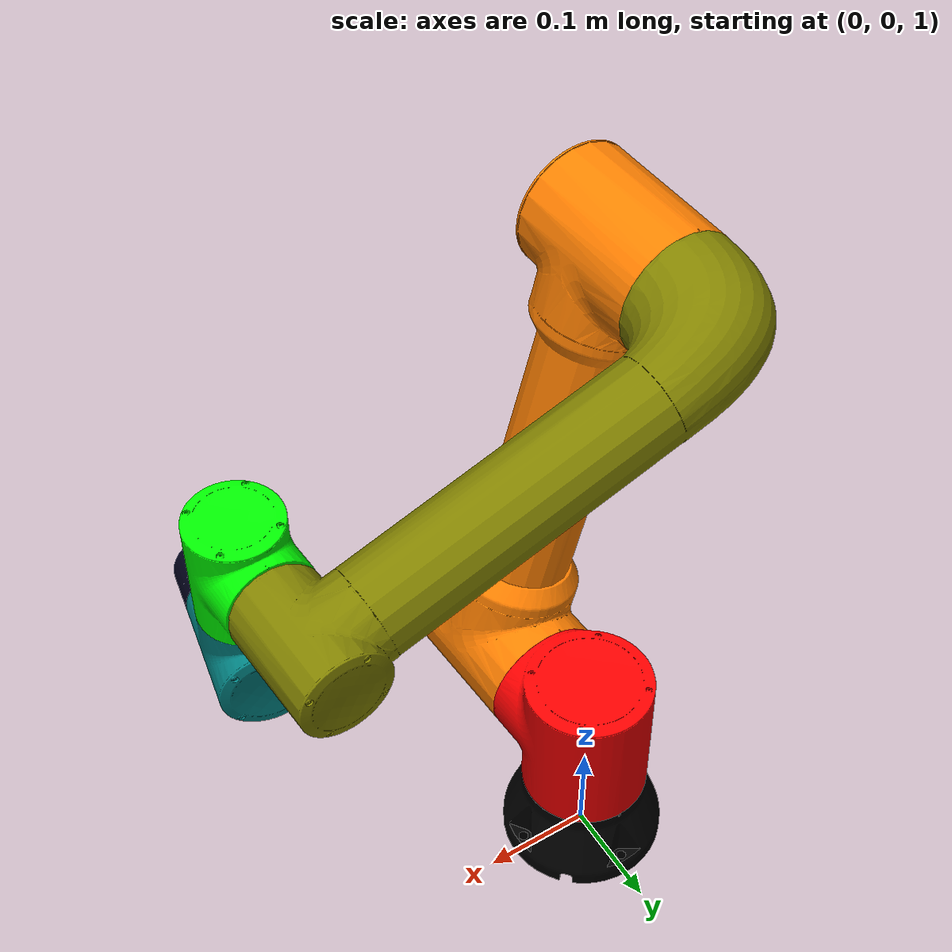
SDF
<?xml version="1.0" ?>
<sdf version='1.10'>
  <world name='empty'>
    <physics name='1ms' type='ignored'>
      <max_step_size>0.001</max_step_size>
      <real_time_factor>1</real_time_factor>
      <real_time_update_rate>1000</real_time_update_rate>
    </physics>
    <plugin name='gz::sim::systems::Physics' filename='gz-sim-physics-system'/>
    <plugin name='gz::sim::systems::UserCommands' filename='gz-sim-user-commands-system'/>
    <plugin name='gz::sim::systems::SceneBroadcaster' filename='gz-sim-scene-broadcaster-system'/>
    <plugin name='gz::sim::systems::Contact' filename='gz-sim-contact-system'/>
	<plugin name="gz::sim::systems::Imu" filename="gz-sim-imu-system"/>
	<plugin name="gz::sim::systems::Sensors" filename="gz-sim-sensors-system"/>
	<plugin name="gz::sim::systems::ForceTorque" filename="gz-sim-forcetorque-system"/>

    <gravity>0 0 -9.8000000000000007</gravity>
    <magnetic_field>5.5644999999999998e-06 2.2875799999999999e-05 -4.2388400000000002e-05</magnetic_field>
    <atmosphere type='adiabatic'/>
    <scene>
      <ambient>0.400000006 0.400000006 0.400000006 1</ambient>
      <background>0.699999988 0.699999988 0.699999988 1</background>
      <shadows>true</shadows>
    </scene>
    <model name='ground_plane'>
      <static>true</static>
      <link name='link'>
        <collision name='collision'>
          <geometry>
            <plane>
              <normal>0 0 1</normal>
              <size>100 100</size>
            </plane>
          </geometry>
          <surface>
            <friction>
              <ode/>
            </friction>
            <bounce/>
            <contact/>
          </surface>
        </collision>
        <visual name='visual'>
          <geometry>
            <plane>
              <normal>0 0 1</normal>
              <size>100 100</size>
            </plane>
          </geometry>
          <material>
            <ambient>0.800000012 0.800000012 0.800000012 1</ambient>
            <diffuse>0.800000012 0.800000012 0.800000012 1</diffuse>
            <specular>0.800000012 0.800000012 0.800000012 1</specular>
          </material>
        </visual>
        <pose>0 0 0 0 0 0</pose>
        <inertial>
          <pose>0 0 0 0 0 0</pose>
          <mass>1</mass>
          <inertia>
            <ixx>1</ixx>
            <ixy>0</ixy>
            <ixz>0</ixz>
            <iyy>1</iyy>
            <iyz>0</iyz>
            <izz>1</izz>
          </inertia>
        </inertial>
        <enable_wind>false</enable_wind>
      </link>
      <pose>0 0 0 0 0 0</pose>
      <self_collide>false</self_collide>
    </model>
    <include>
      <uri>file:///home/cx/Desktop/massagerobot/control_plugin/resources/models/fr5_robotic_arm</uri>
      <name>FR5urdf</name>
      <pose>0 0 1 0 0 0</pose>
    </include>
    <light name='sun' type='directional'>
      <pose>0 0 10 0 0 0</pose>
      <cast_shadows>true</cast_shadows>
      <intensity>1</intensity>
      <direction>-0.5 0.10000000000000001 -0.90000000000000002</direction>
      <diffuse>0.800000012 0.800000012 0.800000012 1</diffuse>
      <specular>0.200000003 0.200000003 0.200000003 1</specular>
      <attenuation>
        <range>1000</range>
        <linear>0.01</linear>
        <constant>0.90000000000000002</constant>
        <quadratic>0.001</quadratic>
      </attenuation>
      <spot>
        <inner_angle>0</inner_angle>
        <outer_angle>0</outer_angle>
        <falloff>0</falloff>
      </spot>
    </light>
  </world>
</sdf>

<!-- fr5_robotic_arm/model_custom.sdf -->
<sdf version='1.7'>

  <model name='FR5urdf'>
	<plugin
      filename="libControlMainFrameworkSystem.so"
      name="YF::MainFrameworkSystem">
    </plugin>

    <link name='base_link'>
      <inertial>
        <pose>-0.000319 0.042463 0.000297 0 -0 0</pose>
        <mass>0.599446</mass>
        <inertia>
          <ixx>0.00114206</ixx>
          <ixy>-7.1538e-06</ixy>
          <ixz>-5.6865e-06</ixz>
          <iyy>0.00167441</iyy>
          <iyz>6.63618e-06</iyz>
          <izz>0.00114168</izz>
        </inertia>
      </inertial>
      <collision name='base_link_collision'>
        <pose>0 0 0 0 -0 0</pose>
        <geometry>
          <mesh>
            <scale>1 1 1</scale>
            <uri>model://fr5_robotic_arm/meshes/base_link.STL</uri>
          </mesh>
        </geometry>
      </collision>
      <visual name='base_link_visual'>
        <pose>0 0 0 0 -0 0</pose>
        <geometry>
          <mesh>
            <scale>1 1 1</scale>
            <uri>model://fr5_robotic_arm/meshes/base_link.STL</uri>
          </mesh>
        </geometry>
        <material>
	      <ambient>0.0 0.0 0.0 1</ambient>
          <diffuse>0.0 0.0 0.0 1</diffuse>
          <specular>0.8 0.8 0.8 1</specular>
        </material>
      </visual>
    </link>
    <joint name='joint1' type='revolute'>
      <pose relative_to='base_link'>0 0 0.074 1.5708 0 0.051335</pose>
      <parent>base_link</parent>
      <child>link1</child>
      <axis>
        <xyz>0 1 0</xyz>
        <limit>
          <lower>-3.05433</lower>
          <upper>3.05433</upper>
          <effort>150</effort>
          <velocity>3.15</velocity>
        </limit>
        <dynamics>
          <spring_reference>0</spring_reference>
          <spring_stiffness>0</spring_stiffness>
        </dynamics>
      </axis>
	  <sensor name="joint1_ft" type="force_torque">
		<always_on>1</always_on>
		<update_rate>1000</update_rate>
		<visualize>true</visualize>
		<topic>joint1_ft</topic>
	  </sensor>

    </joint>
    <link name='link1'>
      <pose relative_to='joint1'>0 0 0 0 -0 0</pose>
      <inertial>
        <pose>1e-06 0.072291 0.004092 0 -0 0</pose>
        <mass>1.62121</mass>
        <inertia>
          <ixx>0.00397289</ixx>
          <ixy>-8.72188e-09</ixy>
          <ixz>2.11892e-09</ixz>
          <iyy>0.00302865</iyy>
          <iyz>-4.76903e-05</iyz>
          <izz>0.00385313</izz>
        </inertia>
      </inertial>
      <collision name='link1_collision'>
        <pose>0 0 0 0 -0 0</pose>
        <geometry>
          <mesh>
            <scale>1 1 1</scale>
            <uri>model://fr5_robotic_arm/meshes/link1.STL</uri>
          </mesh>
        </geometry>
      </collision>
      <visual name='link1_visual'>
        <pose>0 0 0 0 -0 0</pose>
        <geometry>
          <mesh>
            <scale>1 1 1</scale>
            <uri>model://fr5_robotic_arm/meshes/link1.STL</uri>
          </mesh>
        </geometry>
        <material>
	  			<ambient>0.0 0.0 0.0 1</ambient>
            	<diffuse>1.0 0.0 0.0 1</diffuse>
            	<specular>0.0 0.0 0.0 1</specular>
        </material>
      </visual>
    </link>
    <joint name='joint2' type='revolute'>
      <pose relative_to='link1'>0 0.078 0.046619 0 0 -1.2908</pose>
      <parent>link1</parent>
      <child>link2</child>
      <axis>
        <xyz>0 0 1</xyz>
        <limit>
          <lower>-4.62512</lower>
          <upper>1.48353</upper>
          <effort>150</effort>
          <velocity>3.15</velocity>
        </limit>
        <dynamics>
          <spring_reference>0</spring_reference>
          <spring_stiffness>0</spring_stiffness>
        </dynamics>
      </axis>
    </joint>
    <link name='link2'>
      <pose relative_to='joint2'>0 0 0 0 -0 0</pose>
      <inertial>
        <pose>-0.2125 -0 0.087988 0 -0 0</pose>
        <mass>5.35537</mass>
        <inertia>
          <ixx>0.0105146</ixx>
          <ixy>1.02673e-07</ixy>
          <ixz>-3.20062e-09</ixz>
          <iyy>0.16884</iyy>
          <iyz>1.69634e-08</iyz>
          <izz>0.166559</izz>
        </inertia>
      </inertial>
      <collision name='link2_collision'>
        <pose>0 0 0 0 -0 0</pose>
        <geometry>
          <mesh>
            <scale>1 1 1</scale>
            <uri>model://fr5_robotic_arm/meshes/link2.STL</uri>
          </mesh>
        </geometry>
      </collision>
      <visual name='link2_visual'>
        <pose>0 0 0 0 -0 0</pose>
        <geometry>
          <mesh>
            <scale>1 1 1</scale>
            <uri>model://fr5_robotic_arm/meshes/link2.STL</uri>
          </mesh>
        </geometry>
        <material>
		  <ambient>0.0 0.0 0.0 1</ambient>
		  <diffuse>1.0 0.5 0.0 1</diffuse>
		  <specular>0.0 0.0 0.0 1</specular>
		</material>
      </visual>
    </link>
    <joint name='joint3' type='revolute'>
      <pose relative_to='link2'>-0.425 0 0 0 0 -2.1133</pose>
      <parent>link2</parent>
      <child>link3</child>
      <axis>
        <xyz>0 0 1</xyz>
        <limit>
          <lower>-2.82743</lower>
          <upper>2.82743</upper>
          <effort>150</effort>
          <velocity>3.15</velocity>
        </limit>
        <dynamics>
          <spring_reference>0</spring_reference>
          <spring_stiffness>0</spring_stiffness>
        </dynamics>
      </axis>
    </joint>
    <link name='link3'>
      <pose relative_to='joint3'>0 0 0 0 -0 0</pose>
      <inertial>
        <pose>-0.187974 3e-06 -0.039977 0 -0 0</pose>
        <mass>2.84204</mass>
        <inertia>
          <ixx>0.00315129</ixx>
          <ixy>-1.61393e-07</ixy>
          <ixz>-0.00254266</ixz>
          <iyy>0.0628538</iyy>
          <iyz>1.15155e-09</iyz>
          <izz>0.0624206</izz>
        </inertia>
      </inertial>
      <collision name='link3_collision'>
        <pose>0 0 0 0 -0 0</pose>
        <geometry>
          <mesh>
            <scale>1 1 1</scale>
            <uri>model://fr5_robotic_arm/meshes/link3.STL</uri>
          </mesh>
        </geometry>
      </collision>
      <visual name='link3_visual'>
        <pose>0 0 0 0 -0 0</pose>
        <geometry>
          <mesh>
            <scale>1 1 1</scale>
            <uri>model://fr5_robotic_arm/meshes/link3.STL</uri>
          </mesh>
        </geometry>
        <material>
	  			<ambient>0.0 0.0 0.0 1</ambient>
            	<diffuse>0.5 0.5 0.0 1</diffuse>
            	<specular>0.0 0.0 0.0 1</specular>
        </material>
      </visual>
    </link>
    <joint name='joint4' type='revolute'>
      <pose relative_to='link3'>-0.39501 0 0.006276 0 0 -2.8791</pose>
      <parent>link3</parent>
      <child>link4</child>
      <axis>
        <xyz>0 0 1</xyz>
        <limit>
          <lower>-4.62512</lower>
          <upper>1.48353</upper>
          <effort>28</effort>
          <velocity>3.2</velocity>
        </limit>
        <dynamics>
          <spring_reference>0</spring_reference>
          <spring_stiffness>0</spring_stiffness>
        </dynamics>
      </axis>
    </joint>
    <link name='link4'>
      <pose relative_to='joint4'>0 0 0 0 -0 0</pose>
      <inertial>
        <pose>1e-06 -0.003738 0.047961 0 -0 0</pose>
        <mass>0.602649</mass>
        <inertia>
          <ixx>0.000799625</ixx>
          <ixy>1.28025e-09</ixy>
          <ixz>1.74167e-08</ixz>
          <iyy>0.00057224</iyy>
          <iyz>1.39849e-05</iyz>
          <izz>0.000736736</izz>
        </inertia>
      </inertial>
      <collision name='link4_collision'>
        <pose>0 0 0 0 -0 0</pose>
        <geometry>
          <mesh>
            <scale>1 1 1</scale>
            <uri>model://fr5_robotic_arm/meshes/link4.STL</uri>
          </mesh>
        </geometry>
      </collision>
      <visual name='link4_visual'>
        <pose>0 0 0 0 -0 0</pose>
        <geometry>
          <mesh>
            <scale>1 1 1</scale>
            <uri>model://fr5_robotic_arm/meshes/link4.STL</uri>
          </mesh>
        </geometry>
        <material>
	  		<ambient>0.0 0.0 0.0 1</ambient>
            <diffuse>0.0 1.0 0.0 1</diffuse>
            <specular>0.0 0.0 0.0 1</specular>
        </material>
      </visual>
    </link>
    <joint name='joint5' type='revolute'>
      <pose relative_to='link4'>0 -0.0532 0.052905 0 -0.24913 0</pose>
      <parent>link4</parent>
      <child>link5</child>
      <axis>
        <xyz>0 -1 0</xyz>
        <limit>
          <lower>-3.05433</lower>
          <upper>3.05433</upper>
          <effort>28</effort>
          <velocity>3.2</velocity>
        </limit>
        <dynamics>
          <spring_reference>0</spring_reference>
          <spring_stiffness>0</spring_stiffness>
        </dynamics>
      </axis>
    </joint>
    <link name='link5'>
      <pose relative_to='joint5'>0 0 0 0 -0 0</pose>
      <inertial>
        <pose>-1e-06 -0.045058 0.003845 0 -0 0</pose>
        <mass>0.585859</mass>
        <inertia>
          <ixx>0.000763045</ixx>
          <ixy>1.36488e-08</ixy>
          <ixz>5.65391e-10</ixz>
          <iyy>0.000724548</iyy>
          <iyz>1.05861e-05</iyz>
          <izz>0.000536034</izz>
        </inertia>
      </inertial>
      <collision name='link5_collision'>
        <pose>0 0 0 0 -0 0</pose>
        <geometry>
          <mesh>
            <scale>1 1 1</scale>
            <uri>model://fr5_robotic_arm/meshes/link5.STL</uri>
          </mesh>
        </geometry>
      </collision>
      <visual name='link5_visual'>
        <pose>0 0 0 0 -0 0</pose>
        <geometry>
          <mesh>
            <scale>1 1 1</scale>
            <uri>model://fr5_robotic_arm/meshes/link5.STL</uri>
          </mesh>
        </geometry>
        <material>
	       <ambient>0.0 0.0 0.0 1</ambient>
           <diffuse>0.0 0.5 0.5 1</diffuse>
           <specular>0.0 0.0 0.0 1</specular>
        </material>
      </visual>
    </link>
    <joint name='joint6' type='revolute'>
      <pose relative_to='link5'>0 -0.0488 0.054969 0 -0 0.49221</pose>
      <parent>link5</parent>
      <child>link6</child>
      <axis>
        <xyz>0 0 1</xyz>
        <limit>
          <lower>-3.05433</lower>
          <upper>3.05433</upper>
          <effort>28</effort>
          <velocity>3.2</velocity>
        </limit>
        <dynamics>
          <spring_reference>0</spring_reference>
          <spring_stiffness>0</spring_stiffness>
        </dynamics>
      </axis>
    </joint>
    <link name='link6'>
      <pose relative_to='joint6'>0 0 0 0 -0 0</pose>
      <inertial>
        <pose>7.8e-05 1.8e-05 0.021153 0 -0 0</pose>
        <mass>0.1946</mass>
        <inertia>
          <ixx>0.000102669</ixx>
          <ixy>-7.4583e-10</ixy>
          <ixz>-4.40372e-08</ixz>
          <iyy>0.000103106</iyy>
          <iyz>8.37294e-08</iyz>
          <izz>0.000154093</izz>
        </inertia>
      </inertial>
      <collision name='link6_collision'>
        <pose>0 0 0 0 -0 0</pose>
        <geometry>
          <mesh>
            <scale>1 1 1</scale>
            <uri>model://fr5_robotic_arm/meshes/link6.STL</uri>
          </mesh>
        </geometry>
      </collision>
      <visual name='link6_visual'>
        <pose>0 0 0 0 -0 0</pose>
        <geometry>
          <mesh>
            <scale>1 1 1</scale>
            <uri>model://fr5_robotic_arm/meshes/link6.STL</uri>
          </mesh>
        </geometry>
        <material>
	      <ambient>0.0 0.0 0.0 1</ambient>
          <diffuse>0.0 0.0 0.1 1</diffuse>
          <specular>0.0 0.0 0.0 1</specular>
        </material>
      </visual>
    </link>
	<!-->Fix the base link<-->
    <joint name="base_fixed" type="fixed">
	  <pose>0 0 0 0 0 0</pose>
      <parent>world</parent>
      <child>base_link</child>
    </joint>
  </model>

</sdf>
